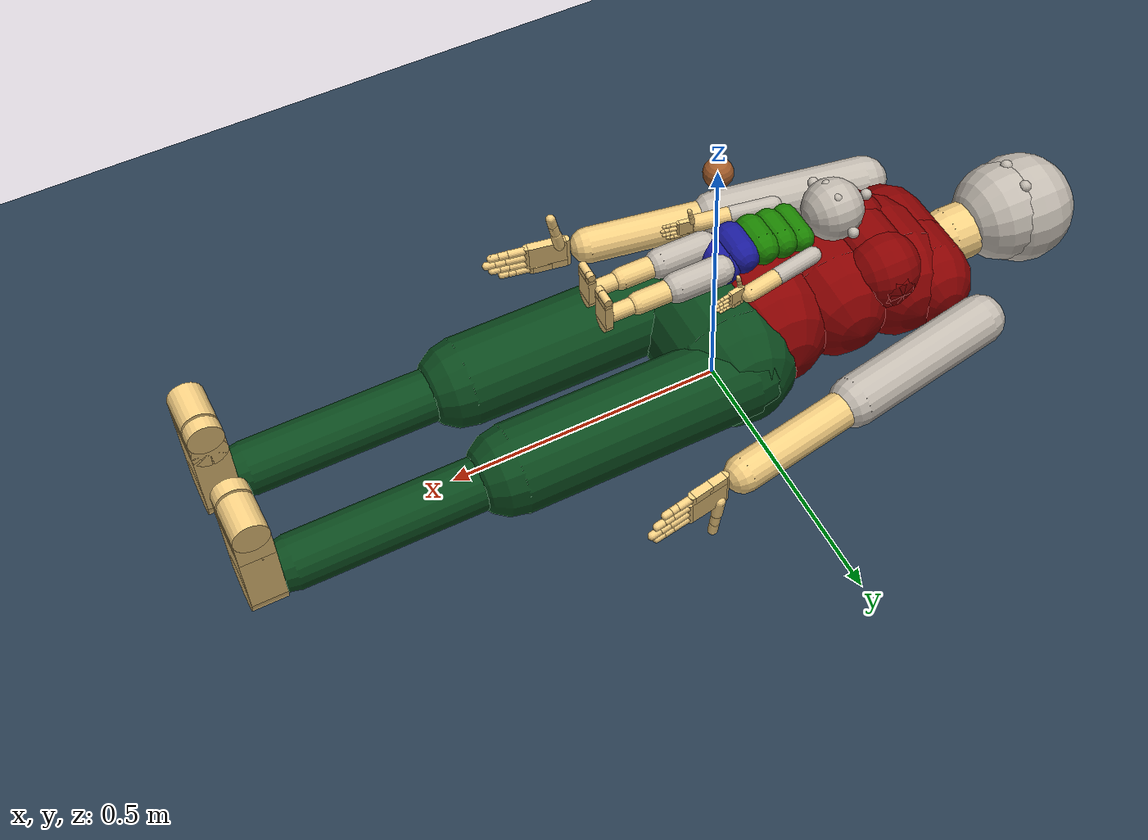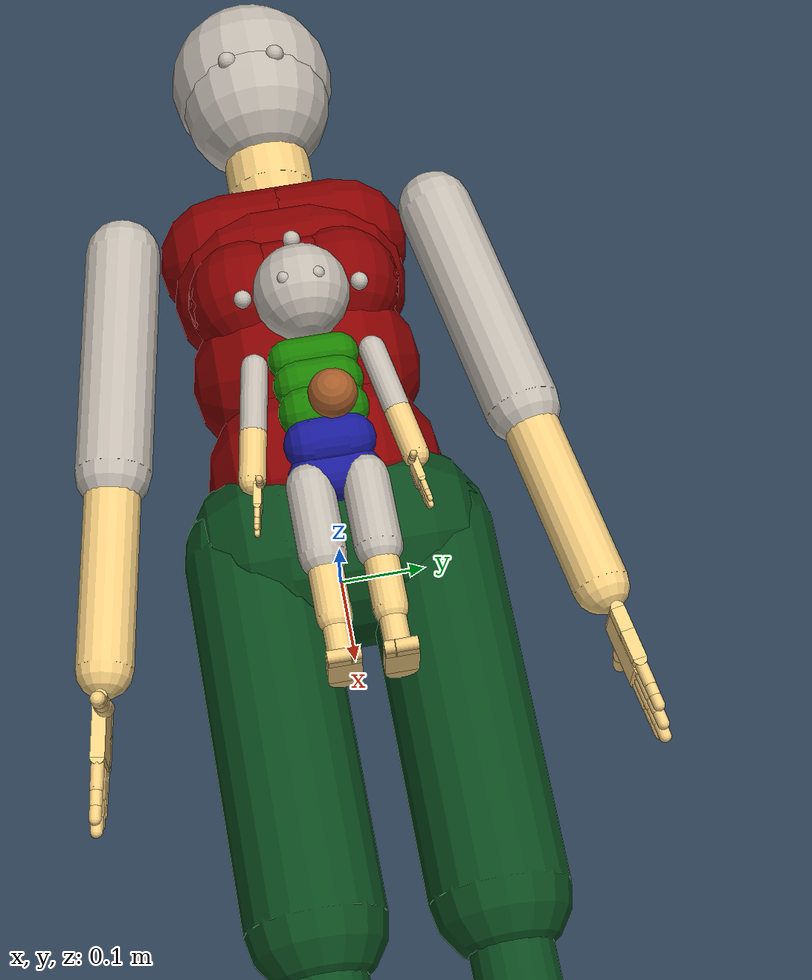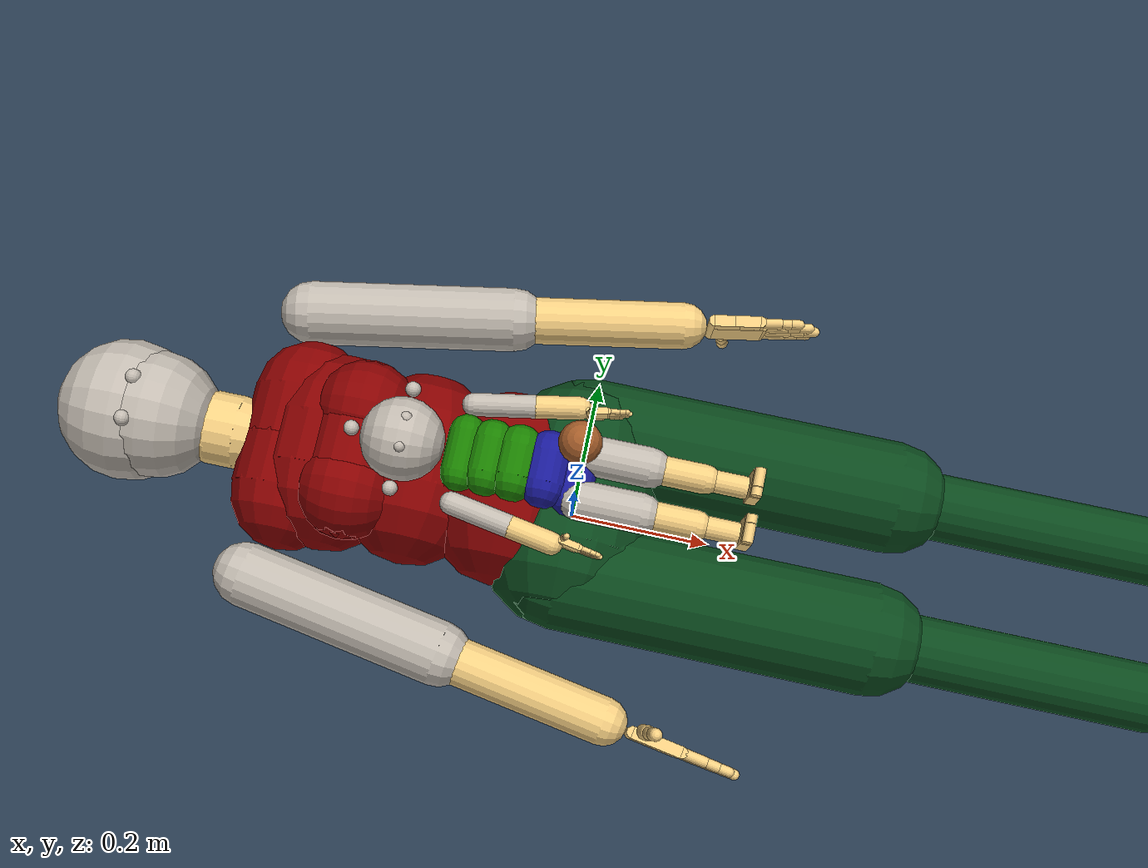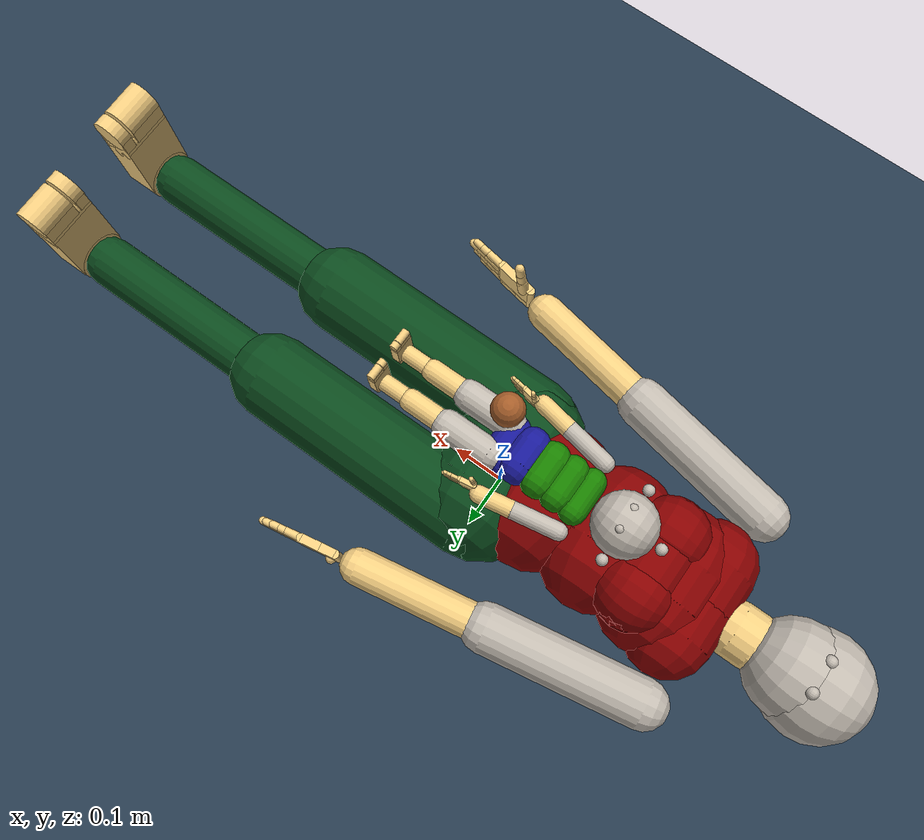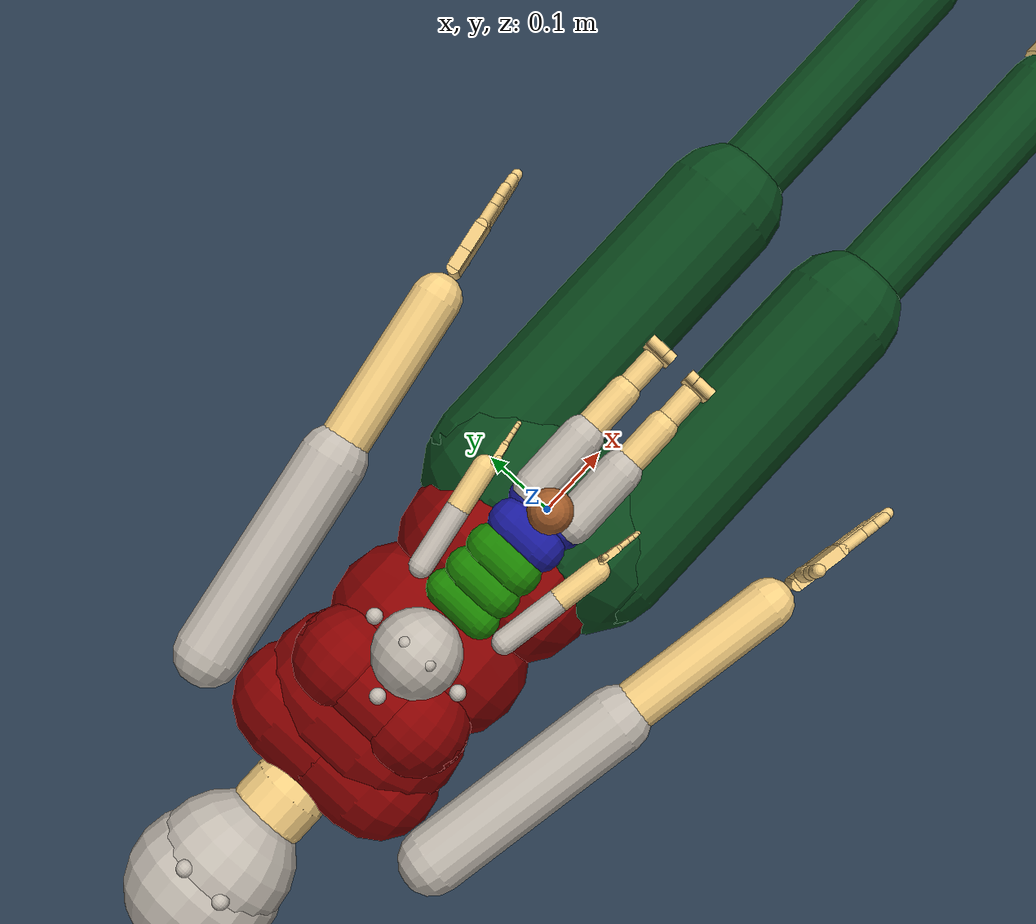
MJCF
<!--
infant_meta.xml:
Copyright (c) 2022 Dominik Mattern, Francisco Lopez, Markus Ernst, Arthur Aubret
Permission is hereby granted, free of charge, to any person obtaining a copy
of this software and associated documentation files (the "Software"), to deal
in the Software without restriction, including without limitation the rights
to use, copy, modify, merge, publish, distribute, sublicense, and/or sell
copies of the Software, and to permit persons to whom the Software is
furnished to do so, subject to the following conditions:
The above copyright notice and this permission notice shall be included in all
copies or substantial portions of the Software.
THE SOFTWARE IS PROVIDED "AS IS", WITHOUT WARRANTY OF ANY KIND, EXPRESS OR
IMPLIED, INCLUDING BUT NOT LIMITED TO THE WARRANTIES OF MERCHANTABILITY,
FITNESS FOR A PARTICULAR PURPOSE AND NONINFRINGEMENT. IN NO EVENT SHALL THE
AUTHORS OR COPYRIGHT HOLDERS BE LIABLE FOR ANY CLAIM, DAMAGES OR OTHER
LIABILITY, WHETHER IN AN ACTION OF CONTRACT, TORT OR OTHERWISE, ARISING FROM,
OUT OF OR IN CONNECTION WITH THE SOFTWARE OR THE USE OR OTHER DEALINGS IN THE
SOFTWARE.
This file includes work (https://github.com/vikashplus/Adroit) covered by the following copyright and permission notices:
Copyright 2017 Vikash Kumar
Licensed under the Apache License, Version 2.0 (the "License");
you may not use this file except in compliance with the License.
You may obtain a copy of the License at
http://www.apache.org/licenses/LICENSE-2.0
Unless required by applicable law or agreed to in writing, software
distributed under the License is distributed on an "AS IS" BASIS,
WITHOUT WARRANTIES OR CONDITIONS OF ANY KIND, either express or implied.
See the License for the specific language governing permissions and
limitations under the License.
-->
<mujoco model="MIMo">

    <compiler inertiafromgeom="true" angle="degree"/>

    <option gravity="0 0 -0.98" timestep="0.005" iterations="50" tolerance="1e-10" solver="Newton" jacobian="dense" cone="elliptic" impratio="1.0"/>

    <size nconmax="1000" njmax="5000" nstack="10000000"/>

    <visual>
        <map force="0.1" zfar="30" znear="0.005"/>
        <rgba haze="0.15 0.25 0.35 1"/>
        <quality shadowsize="4096"/>
        <global offwidth="800" offheight="800"/>
    </visual>

    <default>
        <geom material="matgeom" condim="3" solimp="0.95 0.99 0.001 0.5 1" solref="0.005 1"/>
    </default>

    <asset>
        <texture type="skybox" builtin="gradient" rgb1="0.3 0.5 0.7" rgb2="0 0 0" width="512" height="512"/>

        <texture name="texplane" type="2d" builtin="checker" rgb1=".2 .3 .4" rgb2=".1 0.15 0.2" width="512" height="512" mark="cross" markrgb=".8 .8 .8"/>

        <texture name="texgeom" type="cube" builtin="flat" mark="cross" width="127" height="1278"
            rgb1="0.8 0.6 0.4" rgb2="0.8 0.6 0.4" markrgb="1 1 1" random="0.01"/>

        <material name="matplane" reflectance="0.3" texture="texplane" texrepeat="1 1" texuniform="true"/>

        <material name="matgeom" texture="texgeom" texuniform="true" rgba="0.8 0.6 .4 1"/>

		<material name="matmocap" texture="texgeom" texuniform="true" rgba="0.5 0 0.5 0.5"/>
    </asset>

	<!-- Import everything except the kinematic tree -->
	<include file="adult_infant_assets/textures.xml"></include>
	<include file="infant/infant_meta.xml"></include>
	<include file="adult/adult_meta.xml"></include>

    <equality>

    </equality>

    <worldbody>
        <geom name="floor" pos="0 0 0" size="0 0 .25" type="plane" material="matplane" condim="3"/>

        <light directional="false" diffuse=".4 .4 .4" specular="0 0 0" pos="0 0 10" dir="0 0 -1" castshadow="false"/>

        <!-- The location and orientation of the base model can be set using this body -->
		<body name="mimo_location" pos="0 0 .3" euler="0 -90 0">
			<freejoint/>
			<include file="mimo_newborn/MIMo_modelv2.xml"></include>
		</body>

        <body name="b_loc" pos = "0 0 0.5">
			<freejoint/>
            <geom mass="1" type="sphere" material="matgeom" size="0.025" pos="0 0 0"/>
        </body>

        <body name="a_location" pos="0 0 0.1" euler="0 -90 0">
			<freejoint/>
			<include file="adult/military/adult_military_model.xml"></include>
		</body>

    </worldbody>
</mujoco>

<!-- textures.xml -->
<mujoco model="MIMo">
    <asset>
        <!-- Textures for mimo infant and adult figures -->

		<texture name="tex_head_default" type="cube" fileright="tex/head_front.png" fileleft="tex/head_back.png" fileup="tex/head_left.png" filedown="tex/head_right.png" filefront="tex/head_top.png" rgb1="0.95 .8 .5"/>
		<texture name="tex_head_up" type="cube" fileright="tex/head_up.png" fileleft="tex/head_back.png" fileup="tex/head_left.png" filedown="tex/head_right.png" filefront="tex/head_top.png" rgb1="0.95 .8 .5"/>
		<texture name="tex_head_down" type="cube" fileright="tex/a_face_front.png"  rgb1="0.95 .8 .5"/>
		<texture name="tex_head_happy" type="cube" fileright="tex/head_front_happy.png" fileleft="tex/head_back.png" fileup="tex/head_left.png" filedown="tex/head_right.png" filefront="tex/head_top.png" rgb1="0.95 .8 .5"/>
		<texture name="tex_head_sad" type="cube" fileright="tex/head_front_sad.png" fileleft="tex/head_back.png" fileup="tex/head_left.png" filedown="tex/head_right.png" filefront="tex/head_top.png" rgb1="0.95 .8 .5"/>
		<texture name="tex_head_surprised" type="cube" fileright="tex/head_front_surprised.png" fileleft="tex/head_back.png" fileup="tex/head_left.png" filedown="tex/head_right.png" filefront="tex/head_top.png" rgb1="0.95 .8 .5"/>
		<texture name="tex_head_angry" type="cube" fileright="tex/head_front_angry.png" fileleft="tex/head_back.png" fileup="tex/head_left.png" filedown="tex/head_right.png" filefront="tex/head_top.png" rgb1="0.95 .8 .5"/>
		<texture name="tex_head_disgusted" type="cube" fileright="tex/head_front_disgusted.png" fileleft="tex/head_back.png" fileup="tex/head_left.png" filedown="tex/head_right.png" filefront="tex/head_top.png" rgb1="0.95 .8 .5"/>
		<texture name="tex_head_scared" type="cube" fileright="tex/head_front_scared.png" fileleft="tex/head_back.png" fileup="tex/head_left.png" filedown="tex/head_right.png" filefront="tex/head_top.png" rgb1="0.95 .8 .5"/>
		<texture name="tex_top_sleeve" type="cube" fileright="tex/sleeve_right.png" fileleft="tex/sleeve_left.png" fileup="tex/sleeve_up.png" filedown="tex/sleeve_down.png" filefront="tex/sleeve_front.png" fileback="tex/sleeve_back.png" rgb1="0.95 .8 .5"/>
		<texture name="tex_pants_leg" type="cube" fileright="tex/leg_right.png" fileleft="tex/leg_left.png" fileup="tex/leg_up.png" filedown="tex/leg_down.png" filefront="tex/leg_front.png" fileback="tex/leg_back.png" rgb1="0.95 .8 .5"/>
		<texture name="tex_eye_left" type="cube" fileright="tex/eye_pupil_left.png" rgb1="1 1 1"/>
		<texture name="tex_eye_right" type="cube" fileright="tex/eye_pupil_right.png" rgb1="1 1 1"/>

		<texture name="a_tex_head_default" type="cube" fileright="tex/head_front.png" fileleft="tex/head_back.png" fileup="tex/head_left.png" filedown="tex/head_right.png" filefront="tex/head_top.png" rgb1="0.95 .8 .5"/>
		<texture name="a_tex_top_sleeve" type="cube" fileright="tex/a_sleeve_right.png" fileleft="tex/a_sleeve_left.png" fileup="tex/a_sleeve_up.png" filedown="tex/a_sleeve_down.png" filefront="tex/sleeve_front.png" fileback="tex/a_sleeve_back.png" rgb1="0.95 .8 .5"/>
		<texture name="a_tex_eye_left" type="cube" fileright="tex/eye_pupil_left.png" rgb1="1 1 1"/>
		<texture name="a_tex_eye_right" type="cube" fileright="tex/eye_pupil_right.png" rgb1="1 1 1"/>

		<material name="mocap_bb" rgba="0.95 0.95 0 1" specular=".15" shininess=".7"/>
		<material name="mocap" rgba="0.95 0 0 1" specular=".15" shininess=".7"/>
		<material name="skin" rgba="0.95 0.8 0.5 1" specular=".15" shininess=".7"/>
		<material name="buttons" rgba=".05 .05 .05 1" specular=".9" shininess=".9"/>
		<material name="head" texture="tex_head_default" texuniform="true" specular=".0" shininess=".0"/>
		<material name="top_up" rgba=".1 .5 0.0 1" specular=".0" shininess=".0"/>
		<material name="top_middle" rgba=".1 .5 0.0 1" specular=".0" shininess=".0"/>
		<material name="top_down" rgba=".1 .5 0.0 1" specular=".0" shininess=".0"/>
		<material name="boob" rgba=".1 .5 0.0 1" specular=".0" shininess=".0"/>
		<material name="top_sleeve" texture="tex_top_sleeve" texuniform="true" specular=".0" shininess=".0"/>
		<material name="pants_up" rgba="0.1 0.1 0.6 1" specular=".0" shininess=".0"/>
		<material name="pants_down" rgba="0.1 0.1 0.6 1" specular=".0" shininess=".0"/>
		<material name="pants_leg" texture="tex_pants_leg" texuniform="true" specular=".0" shininess=".0"/>
		<material name="eye_left" texture="tex_eye_left" texuniform="true" specular=".0" shininess=".0"/>
		<material name="eye_right" texture="tex_eye_right" texuniform="true" specular=".0" shininess=".0"/>

		<material name="a_mocap_bb" rgba="0.95 0.95 0 1" specular=".15" shininess=".7"/>
		<material name="a_mocap" rgba="0.95 0 0 1" specular=".15" shininess=".7"/>
		<material name="a_skin" rgba="0.95 0.8 0.5 1" specular=".15" shininess=".7"/>
		<material name="a_buttons" rgba=".05 .05 .05 1" specular=".9" shininess=".9"/>
		<material name="a_head" texture="a_tex_head_default" texuniform="true" specular=".0" shininess=".0"/>
		<material name="a_head_down" texture="tex_head_down" texuniform="true" specular=".0" shininess=".0"/>
		<material name="a_head_up" texture="tex_head_up" texuniform="true" specular=".0" shininess=".0"/>
		<material name="a_top_up" rgba="0.529 0 0 1" specular=".0" shininess=".0"/>
		<material name="a_top_middle" rgba="0.529 0 0 1" specular=".0" shininess=".0"/>
		<material name="a_top_down" rgba="0.529 0 0 1" specular=".0" shininess=".0"/>
		<material name="a_boob" rgba="0.529 0 0 1" specular=".0" shininess=".0"/>
		<material name="a_top_sleeve" texture="a_tex_top_sleeve" texuniform="true" specular=".0" shininess=".0"/>
		<material name="a_pants_up" rgba="0.529 0 0 1" specular=".0" shininess=".0"/>
		<material name="a_pants_down" rgba="0.039 0.282 0.11 1" specular=".0" shininess=".0"/>
		<material name="a_pants_leg" rgba="0.039 0.282 0.11 1" specular=".0" shininess=".0"/>
		<material name="a_eye_left" texture="a_tex_eye_left" texuniform="true" specular=".0" shininess=".0"/>
		<material name="a_eye_right" texture="a_tex_eye_right" texuniform="true" specular=".0" shininess=".0"/>

		<material name="wall" rgba="0.506 0.686 0.761 1" specular="0" shininess="0"/>
		<material name="carpet" rgba="0.306 0.376 0.408 1" specular="0" shininess="0"/>

    </asset>
</mujoco>

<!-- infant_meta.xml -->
<mujoco model="MIMo">

	<!-- We use the first three user values on actuators to store the muscle model parameters. The first is VMAX, the next two are FMAX.-->
	<size nuser_actuator="3" />

	<default>
		<default class="mimo">
        	<joint limited="true" damping=".1" stiffness=".1" armature="0.001" solimplimit="0.98 0.99 0.001 .5 1" solreflimit="0.02 1"/>
        	<geom condim="3" material="skin" friction="1 0.005 0.0002" solimp="0.95 0.99 0.001 0.5 1" solref="0.005 1"/>
        	<motor ctrlrange="-1 1" ctrllimited="true" forcelimited="true"/>
    	</default>
	</default>

    <asset>
        <!-- Textures are loaded from textures.xml -->

    </asset>

	<!-- Internal contacts should not have friction to reduce "getting stuck" on ourselves-->
	<contact>
		<pair geom1="lb" geom2="ub1" condim="1"/>
		<exclude body1="left_eye" body2="upper_body"/>
		<exclude body1="right_eye" body2="upper_body"/>
	</contact>

	<tendon>
		<fixed class="mimo" name="hip_bend" limited="true" range="-.01 .01">
			<joint joint="robot:hip_bend1" coef="1"/>
			<joint joint="robot:hip_bend2" coef="-1"/>
		</fixed>
		<fixed class="mimo" name="hip_rotation" limited="true" range="-.01 .01">
			<joint joint="robot:hip_rot1" coef="1"/>
			<joint joint="robot:hip_rot2" coef="-1"/>
		</fixed>
		<fixed class="mimo" name="hip_lean" limited="true" range="-.01 .01">
			<joint joint="robot:hip_lean1" coef="1"/>
			<joint joint="robot:hip_lean2" coef="-.5"/>
		</fixed>

		<fixed class="mimo" name="head_limits1" limited="true" range="-2.1 2.1">
			<joint joint="robot:head_swivel" coef="1"/>
			<joint joint="robot:head_tilt_side" coef="1"/>
		</fixed>
		<fixed class="mimo" name="head_limits2" limited="true" range="-2.1 2.1">
			<joint joint="robot:head_tilt" coef="1"/>
			<joint joint="robot:head_tilt_side" coef="1"/>
		</fixed>
		<fixed class="mimo" name="head_limits3" limited="true" range="-2.1 2.1">
			<joint joint="robot:head_swivel" coef="1"/>
			<joint joint="robot:head_tilt" coef="1"/>
		</fixed>
		<fixed class="mimo" name="head_limits1_sym" limited="true" range="-2.1 2.1">
			<joint joint="robot:head_swivel" coef="1"/>
			<joint joint="robot:head_tilt_side" coef="-1"/>
		</fixed>
		<fixed class="mimo" name="head_limits2_sym" limited="true" range="-2.1 2.1">
			<joint joint="robot:head_tilt" coef="1"/>
			<joint joint="robot:head_tilt_side" coef="-1"/>
		</fixed>
		<fixed class="mimo" name="head_limits3_sym" limited="true" range="-2.1 2.1">
			<joint joint="robot:head_swivel" coef="1"/>
			<joint joint="robot:head_tilt" coef="-1"/>
		</fixed>
	</tendon>

	<sensor>
		<accelerometer name="vestibular_acc" site="vestibular"/>
		<gyro name="vestibular_gyro" site="vestibular"/>

		<torque name="proprio:neck" site="torque_neck"/>
		<torque name="proprio:left_eye" site="torque_left_eye"/>
		<torque name="proprio:right_eye" site="torque_right_eye"/>

		<torque name="proprio:trunk_upper" site="torque_ub"/>
		<torque name="proprio:trunk_lower" site="torque_lb"/>

		<torque name="proprio:right_shoulder" site="torque_right_shoulder"/>
		<torque name="proprio:right_elbow" site="torque_right_elbow"/>
		<torque name="proprio:right_wrist" site="torque_right_wrist"/>

		<torque name="proprio:right_ff_knuckle" site="torque_right_ff_knuckle"/>
		<torque name="proprio:right_ff_middle" site="torque_right_ff_middle"/>
		<torque name="proprio:right_ff_distal" site="torque_right_ff_distal"/>
		<torque name="proprio:right_mf_knuckle" site="torque_right_mf_knuckle"/>
		<torque name="proprio:right_mf_middle" site="torque_right_mf_middle"/>
		<torque name="proprio:right_mf_distal" site="torque_right_mf_distal"/>
		<torque name="proprio:right_rf_knuckle" site="torque_right_rf_knuckle"/>
		<torque name="proprio:right_rf_middle" site="torque_right_rf_middle"/>
		<torque name="proprio:right_rf_distal" site="torque_right_rf_distal"/>
		<torque name="proprio:right_lf_meta" site="torque_right_lf_meta"/>
		<torque name="proprio:right_lf_knuckle" site="torque_right_lf_knuckle"/>
		<torque name="proprio:right_lf_middle" site="torque_right_lf_middle"/>
		<torque name="proprio:right_lf_distal" site="torque_right_lf_distal"/>
		<torque name="proprio:right_th_base" site="torque_right_th_base"/>
		<torque name="proprio:right_th_hub" site="torque_right_th_hub"/>
		<torque name="proprio:right_th_distal" site="torque_right_th_distal"/>

		<torque name="proprio:left_shoulder" site="torque_left_shoulder"/>
		<torque name="proprio:left_elbow" site="torque_left_elbow"/>
		<torque name="proprio:left_wrist" site="torque_left_wrist"/>

		<torque name="proprio:left_ff_knuckle" site="torque_left_ff_knuckle"/>
		<torque name="proprio:left_ff_middle" site="torque_left_ff_middle"/>
		<torque name="proprio:left_ff_distal" site="torque_left_ff_distal"/>
		<torque name="proprio:left_mf_knuckle" site="torque_left_mf_knuckle"/>
		<torque name="proprio:left_mf_middle" site="torque_left_mf_middle"/>
		<torque name="proprio:left_mf_distal" site="torque_left_mf_distal"/>
		<torque name="proprio:left_rf_knuckle" site="torque_left_rf_knuckle"/>
		<torque name="proprio:left_rf_middle" site="torque_left_rf_middle"/>
		<torque name="proprio:left_rf_distal" site="torque_left_rf_distal"/>
		<torque name="proprio:left_lf_meta" site="torque_left_lf_meta"/>
		<torque name="proprio:left_lf_knuckle" site="torque_left_lf_knuckle"/>
		<torque name="proprio:left_lf_middle" site="torque_left_lf_middle"/>
		<torque name="proprio:left_lf_distal" site="torque_left_lf_distal"/>
		<torque name="proprio:left_th_base" site="torque_left_th_base"/>
		<torque name="proprio:left_th_hub" site="torque_left_th_hub"/>
		<torque name="proprio:left_th_distal" site="torque_left_th_distal"/>

		<torque name="proprio:right_hip" site="torque_right_hip"/>
		<torque name="proprio:right_knee" site="torque_right_knee"/>
		<torque name="proprio:right_ankle" site="torque_right_ankle"/>
		<torque name="proprio:right_toes" site="torque_right_toes"/>
		<torque name="proprio:right_big_toe" site="torque_right_big_toe"/>

		<torque name="proprio:left_hip" site="torque_left_hip"/>
		<torque name="proprio:left_knee" site="torque_left_knee"/>
		<torque name="proprio:left_ankle" site="torque_left_ankle"/>
		<torque name="proprio:left_toes" site="torque_left_toes"/>
		<torque name="proprio:left_big_toe" site="torque_left_big_toe"/>
	</sensor>

    <actuator>
		<!-- 12 + 2*30 + 2*9 = 90 degrees of freedom-->
		<motor class="mimo"	name="act:hip_bend" 						joint="robot:hip_bend1" 				gear="10.58" 		forcerange="-1 .765"	user=".8574 32.93 22.97"/>
		<motor class="mimo"	name="act:hip_twist" 						joint="robot:hip_rot1" 					gear="3.63" 		forcerange="-1 1"		user="1.699 8.136 8.136"/>
		<motor class="mimo"	name="act:hip_lean" 						joint="robot:hip_lean1" 				gear="7.25" 		forcerange="-1 1"		user="1.278 1.264 1.264"/>

		<motor class="mimo"	name="act:head_swivel" 						joint="robot:head_swivel" 				gear="1.8" 			forcerange="-1 1"		user=".6665 24.87 24.87"/>
		<motor class="mimo"	name="act:head_tilt" 						joint="robot:head_tilt" 				gear="3.3" 			forcerange="-1 .55"		user=".9338 31.39 16.86"/>
		<motor class="mimo"	name="act:head_tilt_side" 					joint="robot:head_tilt_side" 			gear="1.8" 			forcerange="-1 1"		user="1.068 15.69 15.69"/>

		<motor class="mimo" name="act:left_eye_horizontal" 				joint="robot:left_eye_horizontal" 		gear=".0054" 		forcerange="-1 1"		user="5.110 .03025 .03025"/>
		<motor class="mimo" name="act:left_eye_vertical" 				joint="robot:left_eye_vertical" 		gear=".0054" 		forcerange="-1 1"		user="6.179 .02619 .02771"/>
		<motor class="mimo" name="act:left_eye_torsional" 				joint="robot:left_eye_torsional" 		gear=".0037" 		forcerange="-1 1"		user="25.03 .003686 .003686"/>
		<motor class="mimo" name="act:right_eye_horizontal" 			joint="robot:right_eye_horizontal" 		gear=".0054" 		forcerange="-1 1"		user="5.110 .03025 .03025"/>
		<motor class="mimo" name="act:right_eye_vertical" 				joint="robot:right_eye_vertical" 		gear=".0054" 		forcerange="-1 1"		user="6.179 .02619 .02771"/>
		<motor class="mimo" name="act:right_eye_torsional" 				joint="robot:right_eye_torsional" 		gear=".0037" 		forcerange="-1 1"		user="25.03 .003686 .003686"/>

		<motor class="mimo"	name="act:right_shoulder_horizontal" 		joint="robot:right_shoulder_horizontal" gear="1.8" 			forcerange="-1 1"		user="1.811 18.80 15.30"/>
		<motor class="mimo"	name="act:right_shoulder_abduction" 		joint="robot:right_shoulder_ad_ab" 		gear="4" 			forcerange="-.6875 1"	user=".8793 44.17 69.23"/>
		<motor class="mimo"	name="act:right_shoulder_internal" 			joint="robot:right_shoulder_rotation" 	gear="2.5" 			forcerange="-1 .64"		user="1.498 25.09 17.10"/>
		<motor class="mimo"	name="act:right_elbow" 						joint="robot:right_elbow" 				gear="3.6" 			forcerange="-1 .83"		user="1.566 35.43 27.04"/>
		<motor class="mimo"	name="act:right_wrist_rotation" 			joint="robot:right_hand1" 				gear=".7"			forcerange="-1 1"		user="1.513 7.842 7.842"/>
		<motor class="mimo"	name="act:right_wrist_flexion" 				joint="robot:right_hand2" 				gear="1.24"			forcerange="-1 .57"		user="1.455 13.66 7.874"/>
		<motor class="mimo"	name="act:right_wrist_ulnar" 				joint="robot:right_hand3" 				gear=".95"			forcerange="-.87 1"		user="2.254 5.155 6.021"/>

		<motor class="mimo"	name="act:right_ff_side" 			 		joint="robot:right_ff_side" 			gear=".05"			forcerange="-1 1"		user="6.217 .1556 .1556"/>
		<motor class="mimo"	name="act:right_ff_knuckle" 			 	joint="robot:right_ff_knuckle"			gear=".0619"		forcerange="-.345 1"	user="4.368 .1422 .4378"/>
		<motor class="mimo"	name="act:right_ff_middle" 				 	joint="robot:right_ff_middle"			gear=".02063"		forcerange="-.345 1"	user="3.493 .04684 .1339"/>
		<motor class="mimo"	name="act:right_ff_distal" 				 	joint="robot:right_ff_distal"			gear=".01548"		forcerange="-.345 1"	user="2.539 .03054 .07747"/>

		<motor class="mimo"	name="act:right_mf_side" 			 		joint="robot:right_mf_side" 			gear=".05"			forcerange="-1 1"		user="5.375 .1556 .1556"/>
		<motor class="mimo"	name="act:right_mf_knuckle" 			 	joint="robot:right_mf_knuckle"			gear=".117"			forcerange="-.345 1"	user="4.325 .2687 .8275"/>
		<motor class="mimo"	name="act:right_mf_middle" 			 		joint="robot:right_mf_middle"			gear=".039"			forcerange="-.345 1"	user="3.375 .08855 .2532"/>
		<motor class="mimo"	name="act:right_mf_distal" 				 	joint="robot:right_mf_distal"			gear=".02925"		forcerange="-.345 1"	user="2.577 .05771 .1464"/>

		<motor class="mimo"	name="act:right_rf_side"  					joint="robot:right_rf_side" 			gear=".05"			forcerange="-1 1"		user="4.984 .1556 .1556"/>
		<motor class="mimo"	name="act:right_rf_knuckle" 			 	joint="robot:right_rf_knuckle"			gear=".078"			forcerange="-.345 1"	user="2.817 .1791 .5517"/>
		<motor class="mimo"	name="act:right_rf_middle" 			 		joint="robot:right_rf_middle" 			gear=".026"			forcerange="-.345 1"	user="3.007 .05903 .1688"/>
		<motor class="mimo"	name="act:right_rf_distal" 				 	joint="robot:right_rf_distal" 			gear=".0195"		forcerange="-.345 1"	user="2.313 .03847 .09759"/>

		<motor class="mimo"	name="act:right_lf_side" 					joint="robot:right_lf_side" 			gear=".05" 			forcerange="-1 1"		user="5.282 .1556 .1556"/>
		<motor class="mimo"	name="act:right_lf_meta" 					joint="robot:right_lf_meta" 			gear=".064" 		forcerange="-.345 1"	user="6.855 .07962 .1508"/>
		<motor class="mimo"	name="act:right_lf_knuckle" 			 	joint="robot:right_lf_knuckle" 			gear=".0196"		forcerange="-.345 1"	user="2.337 .04502 .1386"/>
		<motor class="mimo"	name="act:right_lf_middle" 				 	joint="robot:right_lf_middle" 			gear=".00653"		forcerange="-.345 1"	user="2.566 .01483 .04239"/>
		<motor class="mimo"	name="act:right_lf_distal" 				 	joint="robot:right_lf_distal" 			gear=".00490"		forcerange="-.345 1"	user="2.001 .009666 .02452"/>

		<motor class="mimo"	name="act:right_thumb_side" 			 	joint="robot:right_th_swivel" 			gear=".373"			forcerange="-.345 1"	user="3.491 1.117 2.604"/>
		<motor class="mimo"	name="act:right_thumb_add" 					joint="robot:right_th_adduction" 		gear=".134" 		forcerange="-1 1"		user="5.646 .4969 .5024"/>
		<motor class="mimo"	name="act:right_thumb_pivot" 				joint="robot:right_th_pivot" 			gear=".1" 			forcerange="-1 1"		user="9.055 .1868 .1868"/>
		<motor class="mimo"	name="act:right_thumb_middle" 			 	joint="robot:right_th_middle" 			gear=".126"			forcerange="-.345 1"	user="3.877 .2433 .7065"/>
		<motor class="mimo"	name="act:right_thumb_distal" 			 	joint="robot:right_th_distal" 			gear=".0945"		forcerange="-.345 1"	user="3.392 .2053 .4959"/>

		<motor class="mimo"	name="act:left_shoulder_horizontal" 		joint="robot:left_shoulder_horizontal" 	gear="1.8" 			forcerange="-1 1"		user="1.811 18.80 15.30"/>
		<motor class="mimo"	name="act:left_shoulder_abduction" 			joint="robot:left_shoulder_ad_ab" 		gear="4" 			forcerange="-.6875 1"	user=".8793 44.17 69.23"/>
		<motor class="mimo"	name="act:left_shoulder_internal" 			joint="robot:left_shoulder_rotation" 	gear="2.5" 			forcerange="-1 .64"		user="1.498 25.09 17.10"/>
		<motor class="mimo"	name="act:left_elbow" 						joint="robot:left_elbow" 				gear="3.6" 			forcerange="-1 .83"		user="1.566 35.43 27.04"/>
		<motor class="mimo"	name="act:left_wrist_rotation" 				joint="robot:left_hand1"  				gear=".7"			forcerange="-1 1"		user="1.513 7.842 7.842"/>
		<motor class="mimo"	name="act:left_wrist_flexion" 				joint="robot:left_hand2"  				gear="1.24"			forcerange="-1 .57"		user="1.455 13.66 7.874"/>
		<motor class="mimo"	name="act:left_wrist_ulnar" 				joint="robot:left_hand3"  				gear=".95"			forcerange="-.87 1"		user="2.254 5.155 6.021"/>

		<motor class="mimo"	name="act:left_ff_side" 		 			joint="robot:left_ff_side" 				gear=".05"			forcerange="-1 1"		user="6.217 .1556 .1556"/>
		<motor class="mimo"	name="act:left_ff_knuckle" 				 	joint="robot:left_ff_knuckle" 			gear=".0619"		forcerange="-.345 1"	user="4.368 .1422 .4378"/>
		<motor class="mimo"	name="act:left_ff_middle" 				 	joint="robot:left_ff_middle" 			gear=".02063"		forcerange="-.345 1"	user="3.493 .04684 .1339"/>
		<motor class="mimo"	name="act:left_ff_distal" 				 	joint="robot:left_ff_distal" 			gear=".01548"		forcerange="-.345 1"	user="2.539 .03054 .07747"/>

		<motor class="mimo"	name="act:left_mf_side" 		 			joint="robot:left_mf_side" 				gear=".05"			forcerange="-1 1"		user="5.375 .1556 .1556"/>
		<motor class="mimo"	name="act:left_mf_knuckle" 			 		joint="robot:left_mf_knuckle" 			gear=".117"			forcerange="-.345 1"	user="4.325 .2687 .8275"/>
		<motor class="mimo"	name="act:left_mf_middle" 			 		joint="robot:left_mf_middle" 			gear=".039"			forcerange="-.345 1"	user="3.375 .08855 .2532"/>
		<motor class="mimo"	name="act:left_mf_distal" 				 	joint="robot:left_mf_distal" 			gear=".02925"		forcerange="-.345 1"	user="2.577 .05771 .1464"/>

		<motor class="mimo"	name="act:left_rf_side" 		 			joint="robot:left_rf_side" 				gear=".05"			forcerange="-1 1"		user="4.984 .1556 .1556"/>
		<motor class="mimo"	name="act:left_rf_knuckle" 			 		joint="robot:left_rf_knuckle" 			gear=".078"			forcerange="-.345 1"	user="2.817 .1791 .5517"/>
		<motor class="mimo"	name="act:left_rf_middle" 			 		joint="robot:left_rf_middle" 			gear=".026"			forcerange="-.345 1"	user="3.007 .05903 .1688"/>
		<motor class="mimo"	name="act:left_rf_distal" 			 		joint="robot:left_rf_distal" 			gear=".0195"		forcerange="-.345 1"	user="2.313 .03847 .09759"/>

		<motor class="mimo"	name="act:left_lf_side" 		 			joint="robot:left_lf_side" 				gear=".05"			forcerange="-1 1"		user="5.282 .1556 .1556"/>
		<motor class="mimo"	name="act:left_lf_meta" 			 		joint="robot:left_lf_meta" 				gear=".064"			forcerange="-.345 1"	user="6.855 .07962 .1508"/>
		<motor class="mimo"	name="act:left_lf_knuckle" 				 	joint="robot:left_lf_knuckle" 			gear=".0196"		forcerange="-.345 1"	user="2.337 .04502 .1386"/>
		<motor class="mimo"	name="act:left_lf_middle" 				 	joint="robot:left_lf_middle" 			gear=".00653"		forcerange="-.345 1"	user="2.566 .01483 .04239"/>
		<motor class="mimo"	name="act:left_lf_distal" 				 	joint="robot:left_lf_distal" 			gear=".00490"		forcerange="-.345 1"	user="2.001 .009666 .02452"/>

		<motor class="mimo"	name="act:left_thumb_side" 			 		joint="robot:left_th_swivel" 			gear=".373"			forcerange="-.345 1"	user="3.491 1.117 2.604"/>
		<motor class="mimo"	name="act:left_thumb_add" 					joint="robot:left_th_adduction" 		gear=".134" 		forcerange="-1 1"		user="5.646 .4969 .5024"/>
		<motor class="mimo"	name="act:left_thumb_pivot" 				joint="robot:left_th_pivot" 			gear=".1" 			forcerange="-1 1"		user="9.055 .1868 .1868"/>
		<motor class="mimo"	name="act:left_thumb_middle" 			 	joint="robot:left_th_middle" 			gear=".126"			forcerange="-.345 1"	user="3.877 .2433 .7065"/>
		<motor class="mimo"	name="act:left_thumb_distal" 			 	joint="robot:left_th_distal" 			gear=".0945"		forcerange="-.345 1"	user="3.392 .2053 .4959"/>

		<motor class="mimo"	name="act:right_hip_flex" 					joint="robot:right_hip1" 				gear="8" 			forcerange="-1 1"		user="1.083 71.25 92.49"/>
		<motor class="mimo"	name="act:right_hip_abduction" 				joint="robot:right_hip2" 				gear="6.24" 		forcerange="-1 1"		user="1.488 24.81 29.20"/>
		<motor class="mimo"	name="act:right_hip_rotation" 				joint="robot:right_hip3" 				gear="3.54" 		forcerange="-.75 1"		user="1.860 12.32 15.78"/>
		<motor class="mimo"	name="act:right_knee" 						joint="robot:right_knee" 				gear="10" 			forcerange="-.65 1"		user="1.450 63.16 89.27"/>
		<motor class="mimo"	name="act:right_foot_flexion" 				joint="robot:right_foot1" 				gear="3.78"			forcerange="-1 .5"		user="1.430 21.34 11.87"/>
		<motor class="mimo"	name="act:right_foot_inversion" 			joint="robot:right_foot2" 				gear="1.16"			forcerange="-.91 1"		user="1.988 4.184 4.645"/>
		<motor class="mimo"	name="act:right_foot_rotation" 				joint="robot:right_foot3"	 			gear="1.2"			forcerange="-1 1"		user="2.688 3.868 3.625"/>
		<motor class="mimo"	name="act:right_big_toe" 					joint="robot:right_big_toe"	 			gear=".165"			forcerange="-1 .3"		user="1.774 1.473 .4220"/>
		<motor class="mimo"	name="act:right_toes" 						joint="robot:right_toes"	 			gear=".165"			forcerange="-1 .3"		user="1.805 1.473 .4220"/>

		<motor class="mimo"	name="act:left_hip_flex" 					joint="robot:left_hip1" 				gear="8" 			forcerange="-1 1"		user="1.083 71.25 92.49"/>
		<motor class="mimo"	name="act:left_hip_abduction" 				joint="robot:left_hip2" 				gear="6.24" 		forcerange="-1 1"		user="1.488 24.81 29.20"/>
		<motor class="mimo"	name="act:left_hip_rotation" 				joint="robot:left_hip3"					gear="3.54" 		forcerange="-.75 1"		user="1.860 12.32 15.78"/>
		<motor class="mimo"	name="act:left_knee" 						joint="robot:left_knee" 				gear="10" 			forcerange="-.65 1"		user="1.450 63.16 89.27"/>
		<motor class="mimo"	name="act:left_foot_flexion" 				joint="robot:left_foot1" 				gear="3.78"			forcerange="-1 .5"		user="1.430 21.34 11.87"/>
		<motor class="mimo"	name="act:left_foot_inversion" 				joint="robot:left_foot2" 				gear="1.16"			forcerange="-.91 1"		user="1.988 4.184 4.645"/>
		<motor class="mimo"	name="act:left_foot_rotation" 				joint="robot:left_foot3" 				gear="1.2"			forcerange="-1 1"		user="2.688 3.868 3.625"/>
		<motor class="mimo"	name="act:left_toes" 						joint="robot:left_toes"	 				gear=".165"			forcerange="-1 .3"		user="1.774 1.473 .4220"/>
		<motor class="mimo"	name="act:left_big_toe" 					joint="robot:left_big_toe"	 			gear=".165"			forcerange="-1 .3"		user="1.805 1.473 .4220"/>
	</actuator>

	<equality> <!-- These contraints are used for joint locking during runtime -->
		<joint name="robot:hip_lean1" 					joint1="robot:hip_lean1" active="false" polycoef="0 1 0 0 0" solimp="0.95 0.99999 0.001 0.5 2"/>
		<joint name="robot:hip_rot1" 					joint1="robot:hip_rot1" active="false" polycoef="0 1 0 0 0" solimp="0.95 0.99999 0.001 0.5 2"/>
		<joint name="robot:hip_bend1" 					joint1="robot:hip_bend1" active="false" polycoef="0 1 0 0 0" solimp="0.95 0.99999 0.001 0.5 2"/>
		<joint name="robot:hip_lean2" 					joint1="robot:hip_lean2" active="false" polycoef="0 1 0 0 0" solimp="0.95 0.99999 0.001 0.5 2"/>
		<joint name="robot:hip_rot2" 					joint1="robot:hip_rot2" active="false" polycoef="0 1 0 0 0" solimp="0.95 0.99999 0.001 0.5 2"/>
		<joint name="robot:hip_bend2" 					joint1="robot:hip_bend2" active="false" polycoef="0 1 0 0 0" solimp="0.95 0.99999 0.001 0.5 2"/>
		<joint name="robot:head_swivel" 				joint1="robot:head_swivel" active="false" polycoef="0 1 0 0 0" solimp="0.95 0.99999 0.001 0.5 2"/>
		<joint name="robot:head_tilt" 					joint1="robot:head_tilt" active="false" polycoef="0 1 0 0 0" solimp="0.95 0.99999 0.001 0.5 2"/>
		<joint name="robot:head_tilt_side" 				joint1="robot:head_tilt_side" active="false" polycoef="0 1 0 0 0" solimp="0.95 0.99999 0.001 0.5 2"/>
		<joint name="robot:left_eye_horizontal" 		joint1="robot:left_eye_horizontal" active="false" polycoef="0 1 0 0 0" solimp="0.95 0.99999 0.001 0.5 2"/>
		<joint name="robot:left_eye_vertical" 			joint1="robot:left_eye_vertical" active="false" polycoef="0 1 0 0 0" solimp="0.95 0.99999 0.001 0.5 2"/>
		<joint name="robot:left_eye_torsional" 			joint1="robot:left_eye_torsional" active="false" polycoef="0 1 0 0 0" solimp="0.95 0.99999 0.001 0.5 2"/>
		<joint name="robot:right_eye_horizontal" 		joint1="robot:right_eye_horizontal" active="false" polycoef="0 1 0 0 0" solimp="0.95 0.99999 0.001 0.5 2"/>
		<joint name="robot:right_eye_vertical" 			joint1="robot:right_eye_vertical" active="false" polycoef="0 1 0 0 0" solimp="0.95 0.99999 0.001 0.5 2"/>
		<joint name="robot:right_eye_torsional" 		joint1="robot:right_eye_torsional" active="false" polycoef="0 1 0 0 0" solimp="0.95 0.99999 0.001 0.5 2"/>

		<joint name="robot:right_shoulder_horizontal" 	joint1="robot:right_shoulder_horizontal" active="false" polycoef="0 1 0 0 0" solimp="0.95 0.99999 0.001 0.5 2"/>
		<joint name="robot:right_shoulder_ad_ab" 		joint1="robot:right_shoulder_ad_ab" active="false" polycoef="0 1 0 0 0" solimp="0.95 0.99999 0.001 0.5 2"/>
		<joint name="robot:right_shoulder_rotation" 	joint1="robot:right_shoulder_rotation" active="false" polycoef="0 1 0 0 0" solimp="0.95 0.99999 0.001 0.5 2"/>
		<joint name="robot:right_elbow" 				joint1="robot:right_elbow" active="false" polycoef="0 1 0 0 0" solimp="0.95 0.99999 0.001 0.5 2"/>
		<joint name="robot:right_hand1" 				joint1="robot:right_hand1" active="false" polycoef="0 1 0 0 0" solimp="0.95 0.99999 0.001 0.5 2"/>
		<joint name="robot:right_hand2" 				joint1="robot:right_hand2" active="false" polycoef="0 1 0 0 0" solimp="0.95 0.99999 0.001 0.5 2"/>
		<joint name="robot:right_hand3" 				joint1="robot:right_hand3" active="false" polycoef="0 1 0 0 0" solimp="0.95 0.99999 0.001 0.5 2"/>

		<joint name="robot:right_ff_side" 				joint1="robot:right_ff_side" active="false" polycoef="0 1 0 0 0" solimp="0.95 0.99999 0.001 0.5 2"/>
		<joint name="robot:right_ff_knuckle" 			joint1="robot:right_ff_knuckle" active="false" polycoef="0 1 0 0 0" solimp="0.95 0.99999 0.001 0.5 2"/>
		<joint name="robot:right_ff_middle" 			joint1="robot:right_ff_middle" active="false" polycoef="0 1 0 0 0" solimp="0.95 0.99999 0.001 0.5 2"/>
		<joint name="robot:right_ff_distal" 			joint1="robot:right_ff_distal" active="false" polycoef="0 1 0 0 0" solimp="0.95 0.99999 0.001 0.5 2"/>
		<joint name="robot:right_mf_side" 				joint1="robot:right_mf_side" active="false" polycoef="0 1 0 0 0" solimp="0.95 0.99999 0.001 0.5 2"/>
		<joint name="robot:right_mf_knuckle" 			joint1="robot:right_mf_knuckle" active="false" polycoef="0 1 0 0 0" solimp="0.95 0.99999 0.001 0.5 2"/>
		<joint name="robot:right_mf_middle" 			joint1="robot:right_mf_middle" active="false" polycoef="0 1 0 0 0" solimp="0.95 0.99999 0.001 0.5 2"/>
		<joint name="robot:right_mf_distal" 			joint1="robot:right_mf_distal" active="false" polycoef="0 1 0 0 0" solimp="0.95 0.99999 0.001 0.5 2"/>
		<joint name="robot:right_rf_side" 				joint1="robot:right_rf_side" active="false" polycoef="0 1 0 0 0" solimp="0.95 0.99999 0.001 0.5 2"/>
		<joint name="robot:right_rf_knuckle" 			joint1="robot:right_rf_knuckle" active="false" polycoef="0 1 0 0 0" solimp="0.95 0.99999 0.001 0.5 2"/>
		<joint name="robot:right_rf_middle" 			joint1="robot:right_rf_middle" active="false" polycoef="0 1 0 0 0" solimp="0.95 0.99999 0.001 0.5 2"/>
		<joint name="robot:right_rf_distal" 			joint1="robot:right_rf_distal" active="false" polycoef="0 1 0 0 0" solimp="0.95 0.99999 0.001 0.5 2"/>
		<joint name="robot:right_lf_meta" 				joint1="robot:right_lf_meta" active="false" polycoef="0 1 0 0 0" solimp="0.95 0.99999 0.001 0.5 2"/>
		<joint name="robot:right_lf_side" 				joint1="robot:right_lf_side" active="false" polycoef="0 1 0 0 0" solimp="0.95 0.99999 0.001 0.5 2"/>
		<joint name="robot:right_lf_knuckle" 			joint1="robot:right_lf_knuckle" active="false" polycoef="0 1 0 0 0" solimp="0.95 0.99999 0.001 0.5 2"/>
		<joint name="robot:right_lf_middle" 			joint1="robot:right_lf_middle" active="false" polycoef="0 1 0 0 0" solimp="0.95 0.99999 0.001 0.5 2"/>
		<joint name="robot:right_lf_distal" 			joint1="robot:right_lf_distal" active="false" polycoef="0 1 0 0 0" solimp="0.95 0.99999 0.001 0.5 2"/>
		<joint name="robot:right_th_swivel" 			joint1="robot:right_th_swivel" active="false" polycoef="0 1 0 0 0" solimp="0.95 0.99999 0.001 0.5 2"/>
		<joint name="robot:right_th_adduction" 			joint1="robot:right_th_adduction" active="false" polycoef="0 1 0 0 0" solimp="0.95 0.99999 0.001 0.5 2"/>
		<joint name="robot:right_th_pivot" 				joint1="robot:right_th_pivot" active="false" polycoef="0 1 0 0 0" solimp="0.95 0.99999 0.001 0.5 2"/>
		<joint name="robot:right_th_middle" 			joint1="robot:right_th_middle" active="false" polycoef="0 1 0 0 0" solimp="0.95 0.99999 0.001 0.5 2"/>
		<joint name="robot:right_th_distal" 			joint1="robot:right_th_distal" active="false" polycoef="0 1 0 0 0" solimp="0.95 0.99999 0.001 0.5 2"/>

		<joint name="robot:left_shoulder_horizontal" 	joint1="robot:left_shoulder_horizontal" active="false" polycoef="0 1 0 0 0" solimp="0.95 0.99999 0.001 0.5 2"/>
		<joint name="robot:left_shoulder_ad_ab" 		joint1="robot:left_shoulder_ad_ab" active="false" polycoef="0 1 0 0 0" solimp="0.95 0.99999 0.001 0.5 2"/>
		<joint name="robot:left_shoulder_rotation" 		joint1="robot:left_shoulder_rotation" active="false" polycoef="0 1 0 0 0" solimp="0.95 0.99999 0.001 0.5 2"/>
		<joint name="robot:left_elbow" 					joint1="robot:left_elbow" active="false" polycoef="0 1 0 0 0" solimp="0.95 0.99999 0.001 0.5 2"/>
		<joint name="robot:left_hand1" 					joint1="robot:left_hand1" active="false" polycoef="0 1 0 0 0" solimp="0.95 0.99999 0.001 0.5 2"/>
		<joint name="robot:left_hand2" 					joint1="robot:left_hand2" active="false" polycoef="0 1 0 0 0" solimp="0.95 0.99999 0.001 0.5 2"/>
		<joint name="robot:left_hand3" 					joint1="robot:left_hand3" active="false" polycoef="0 1 0 0 0" solimp="0.95 0.99999 0.001 0.5 2"/>

		<joint name="robot:left_ff_side" 				joint1="robot:left_ff_side" active="false" polycoef="0 1 0 0 0" solimp="0.95 0.99999 0.001 0.5 2"/>
		<joint name="robot:left_ff_knuckle" 			joint1="robot:left_ff_knuckle" active="false" polycoef="0 1 0 0 0" solimp="0.95 0.99999 0.001 0.5 2"/>
		<joint name="robot:left_ff_middle" 				joint1="robot:left_ff_middle" active="false" polycoef="0 1 0 0 0" solimp="0.95 0.99999 0.001 0.5 2"/>
		<joint name="robot:left_ff_distal" 				joint1="robot:left_ff_distal" active="false" polycoef="0 1 0 0 0" solimp="0.95 0.99999 0.001 0.5 2"/>
		<joint name="robot:left_mf_side" 				joint1="robot:left_mf_side" active="false" polycoef="0 1 0 0 0" solimp="0.95 0.99999 0.001 0.5 2"/>
		<joint name="robot:left_mf_knuckle" 			joint1="robot:left_mf_knuckle" active="false" polycoef="0 1 0 0 0" solimp="0.95 0.99999 0.001 0.5 2"/>
		<joint name="robot:left_mf_middle" 				joint1="robot:left_mf_middle" active="false" polycoef="0 1 0 0 0" solimp="0.95 0.99999 0.001 0.5 2"/>
		<joint name="robot:left_mf_distal" 				joint1="robot:left_mf_distal" active="false" polycoef="0 1 0 0 0" solimp="0.95 0.99999 0.001 0.5 2"/>
		<joint name="robot:left_rf_side" 				joint1="robot:left_rf_side" active="false" polycoef="0 1 0 0 0" solimp="0.95 0.99999 0.001 0.5 2"/>
		<joint name="robot:left_rf_knuckle" 			joint1="robot:left_rf_knuckle" active="false" polycoef="0 1 0 0 0" solimp="0.95 0.99999 0.001 0.5 2"/>
		<joint name="robot:left_rf_middle" 				joint1="robot:left_rf_middle" active="false" polycoef="0 1 0 0 0" solimp="0.95 0.99999 0.001 0.5 2"/>
		<joint name="robot:left_rf_distal" 				joint1="robot:left_rf_distal" active="false" polycoef="0 1 0 0 0" solimp="0.95 0.99999 0.001 0.5 2"/>
		<joint name="robot:left_lf_meta" 				joint1="robot:left_lf_meta" active="false" polycoef="0 1 0 0 0" solimp="0.95 0.99999 0.001 0.5 2"/>
		<joint name="robot:left_lf_side" 				joint1="robot:left_lf_side" active="false" polycoef="0 1 0 0 0" solimp="0.95 0.99999 0.001 0.5 2"/>
		<joint name="robot:left_lf_knuckle" 			joint1="robot:left_lf_knuckle" active="false" polycoef="0 1 0 0 0" solimp="0.95 0.99999 0.001 0.5 2"/>
		<joint name="robot:left_lf_middle" 				joint1="robot:left_lf_middle" active="false" polycoef="0 1 0 0 0" solimp="0.95 0.99999 0.001 0.5 2"/>
		<joint name="robot:left_lf_distal" 				joint1="robot:left_lf_distal" active="false" polycoef="0 1 0 0 0" solimp="0.95 0.99999 0.001 0.5 2"/>
		<joint name="robot:left_th_swivel" 				joint1="robot:left_th_swivel" active="false" polycoef="0 1 0 0 0" solimp="0.95 0.99999 0.001 0.5 2"/>
		<joint name="robot:left_th_adduction" 			joint1="robot:left_th_adduction" active="false" polycoef="0 1 0 0 0" solimp="0.95 0.99999 0.001 0.5 2"/>
		<joint name="robot:left_th_pivot" 				joint1="robot:left_th_pivot" active="false" polycoef="0 1 0 0 0" solimp="0.95 0.99999 0.001 0.5 2"/>
		<joint name="robot:left_th_middle" 				joint1="robot:left_th_middle" active="false" polycoef="0 1 0 0 0" solimp="0.95 0.99999 0.001 0.5 2"/>
		<joint name="robot:left_th_distal" 				joint1="robot:left_th_distal" active="false" polycoef="0 1 0 0 0" solimp="0.95 0.99999 0.001 0.5 2"/>

		<joint name="robot:right_hip1" 					joint1="robot:right_hip1" active="false" polycoef="0 1 0 0 0" solimp="0.95 0.99999 0.001 0.5 2"/>
		<joint name="robot:right_hip2" 					joint1="robot:right_hip2" active="false" polycoef="0 1 0 0 0" solimp="0.95 0.99999 0.001 0.5 2"/>
		<joint name="robot:right_hip3" 					joint1="robot:right_hip3" active="false" polycoef="0 1 0 0 0" solimp="0.95 0.99999 0.001 0.5 2"/>
		<joint name="robot:right_knee" 					joint1="robot:right_knee" active="false" polycoef="0 1 0 0 0" solimp="0.95 0.99999 0.001 0.5 2"/>
		<joint name="robot:right_foot1" 				joint1="robot:right_foot1" active="false" polycoef="0 1 0 0 0" solimp="0.95 0.99999 0.001 0.5 2"/>
		<joint name="robot:right_foot2" 				joint1="robot:right_foot2" active="false" polycoef="0 1 0 0 0" solimp="0.95 0.99999 0.001 0.5 2"/>
		<joint name="robot:right_foot3" 				joint1="robot:right_foot3" active="false" polycoef="0 1 0 0 0" solimp="0.95 0.99999 0.001 0.5 2"/>
		<joint name="robot:right_big_toe" 				joint1="robot:right_big_toe" active="false" polycoef="0 1 0 0 0" solimp="0.95 0.99999 0.001 0.5 2"/>
		<joint name="robot:right_toes" 					joint1="robot:right_toes"  active="false" polycoef="0 1 0 0 0" solimp="0.95 0.99999 0.001 0.5 2"/>

		<joint name="robot:left_hip1" 					joint1="robot:left_hip1" active="false" polycoef="0 1 0 0 0" solimp="0.95 0.99999 0.001 0.5 2"/>
		<joint name="robot:left_hip2" 					joint1="robot:left_hip2" active="false" polycoef="0 1 0 0 0" solimp="0.95 0.99999 0.001 0.5 2"/>
		<joint name="robot:left_hip3" 					joint1="robot:left_hip3" active="false" polycoef="0 1 0 0 0" solimp="0.95 0.99999 0.001 0.5 2"/>
		<joint name="robot:left_knee" 					joint1="robot:left_knee" active="false" polycoef="0 1 0 0 0" solimp="0.95 0.99999 0.001 0.5 2"/>
		<joint name="robot:left_foot1" 					joint1="robot:left_foot1" active="false" polycoef="0 1 0 0 0" solimp="0.95 0.99999 0.001 0.5 2"/>
		<joint name="robot:left_foot2" 					joint1="robot:left_foot2" active="false" polycoef="0 1 0 0 0" solimp="0.95 0.99999 0.001 0.5 2"/>
		<joint name="robot:left_foot3" 					joint1="robot:left_foot3" active="false" polycoef="0 1 0 0 0" solimp="0.95 0.99999 0.001 0.5 2"/>
		<joint name="robot:left_big_toe" 				joint1="robot:left_big_toe" active="false" polycoef="0 1 0 0 0" solimp="0.95 0.99999 0.001 0.5 2"/>
		<joint name="robot:left_toes" 					joint1="robot:left_toes" active="false" polycoef="0 1 0 0 0" solimp="0.95 0.99999 0.001 0.5 2"/>
	</equality>

</mujoco>
